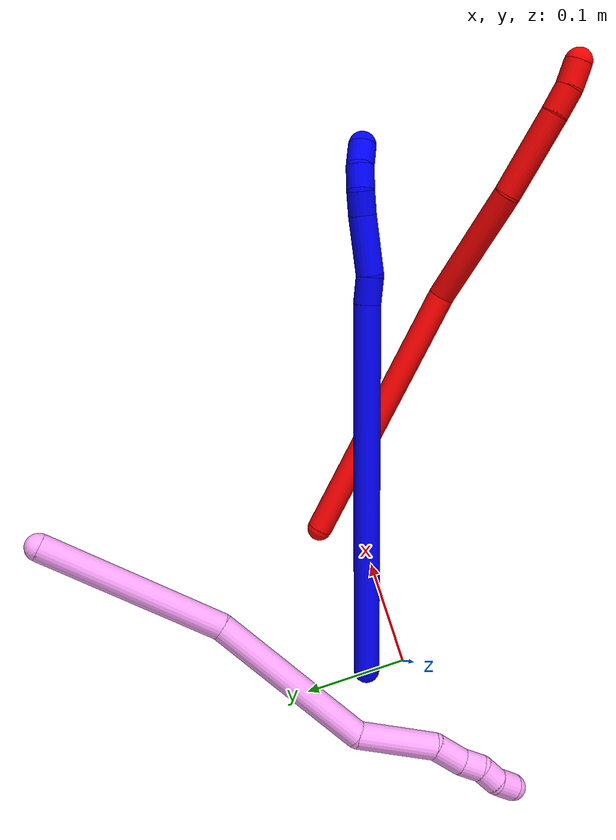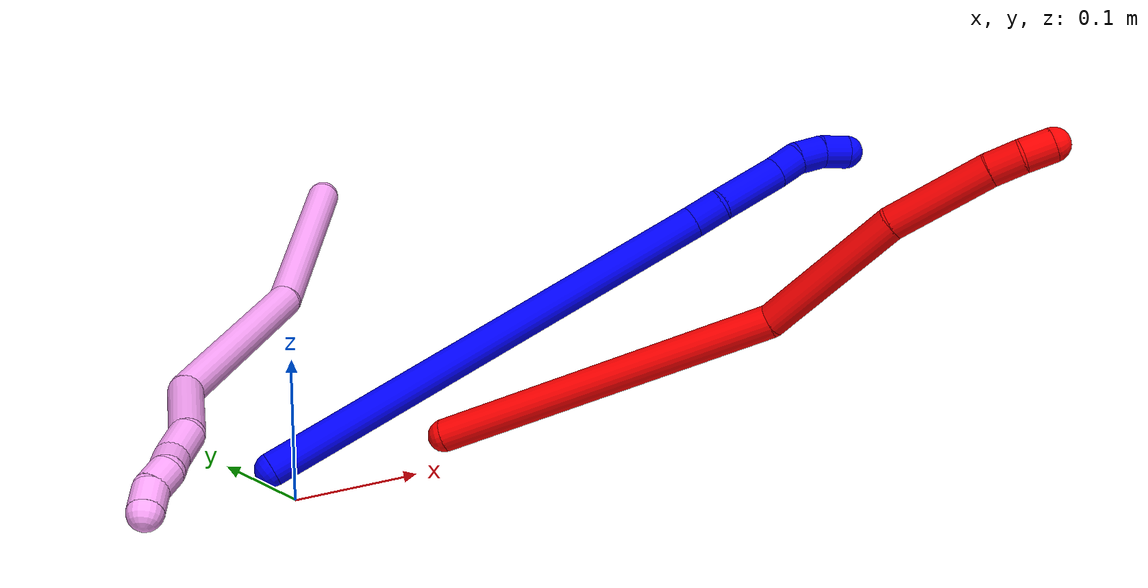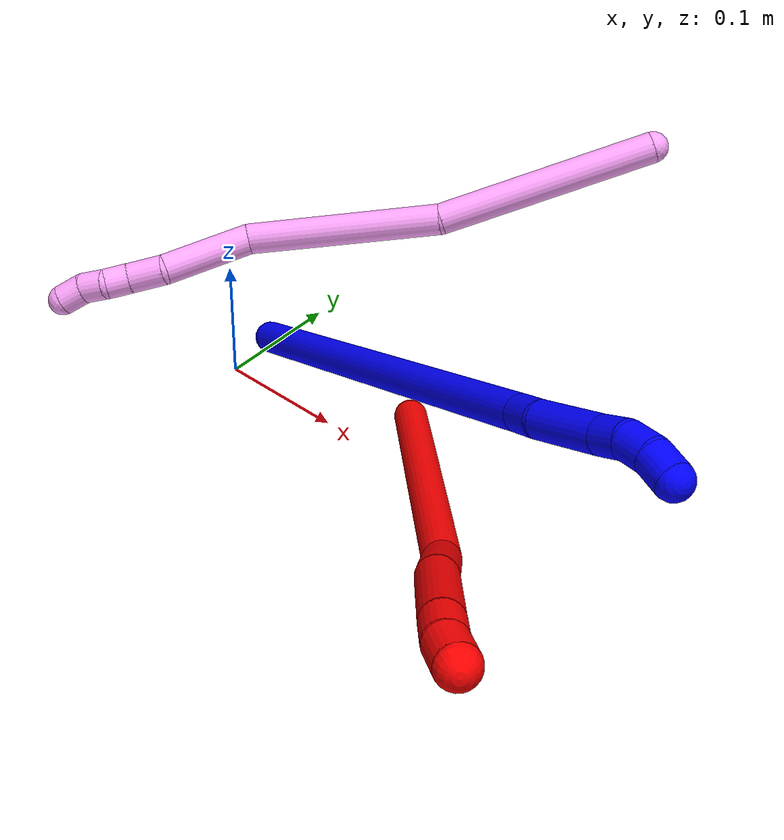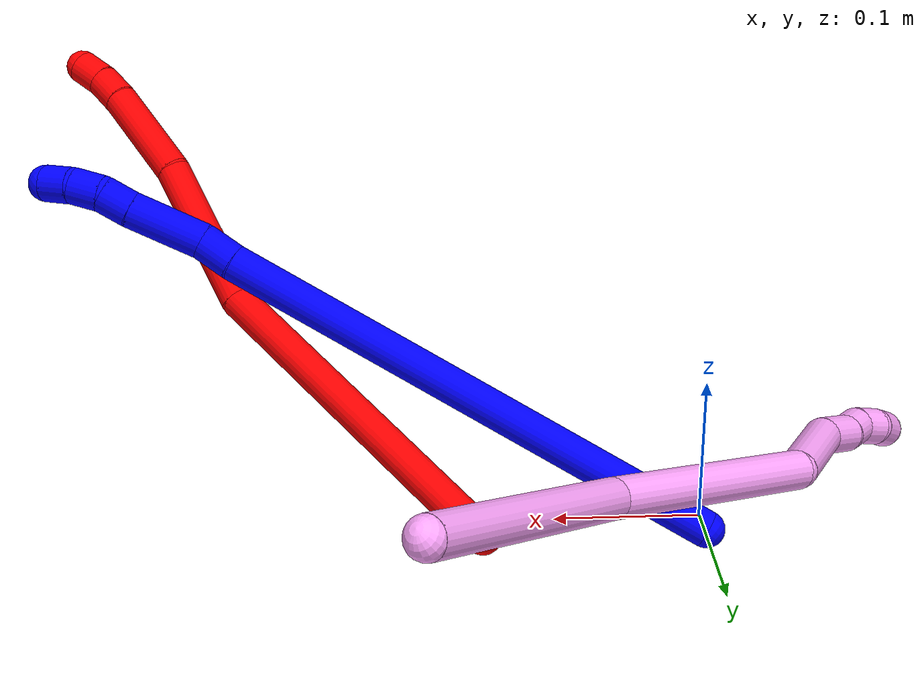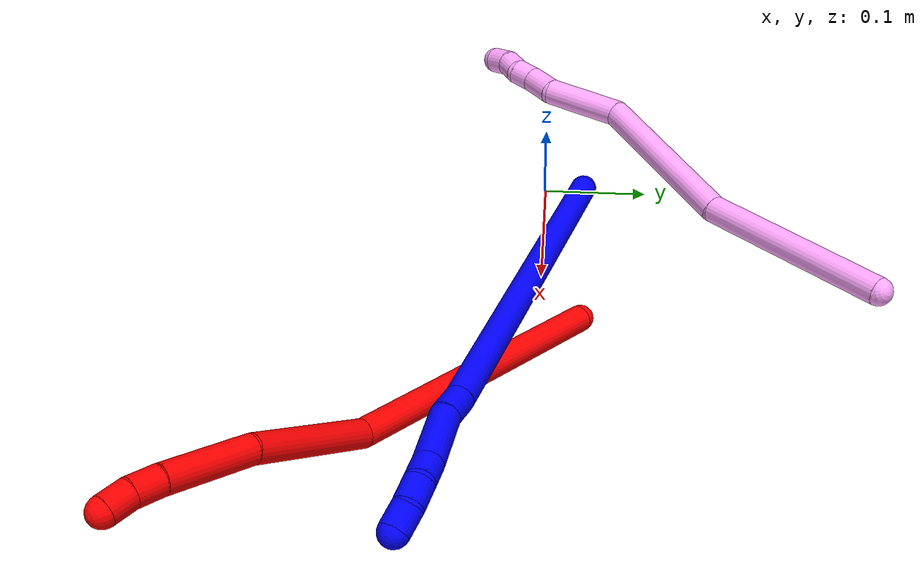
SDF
<sdf version="1.7">
 <world name="default">
  <model name="photoneo_s_sensor">
   <static>1</static>
   <pose>0 0 2 1.57079 1.57079 3.14159</pose>
   <link name="link">
    <inertial><mass>0.1</mass></inertial>
    <sensor name="sensor" type="depth">
     <update_rate>30</update_rate>
     <camera>
      <horizontal_fov>1.22</horizontal_fov>
      <image><width>1920</width><height>1200</height><format>B8G8R8</format></image>
      <clip><near>0.1</near><far>4</far></clip>
      <depth_camera><output>points</output></depth_camera>
     </camera>
     <plugin name="camera_plugin" filename="libgazebo_ros_depth_camera.so">
      <baseline>0.2</baseline>
      <alwaysOn>1</alwaysOn>
      <updateRate>0.0</updateRate>
      <cameraName>camera_ir</cameraName>
      <imageTopicName>/camera/color/image_raw</imageTopicName>
      <cameraInfoTopicName>/camera/color/camera_info</cameraInfoTopicName>
      <depthImageTopicName>/camera/depth/image_raw</depthImageTopicName>
      <depthImageCameraInfoTopicName>/camera/depth/camera_info</depthImageCameraInfoTopicName>
      <pointCloudTopicName>/camera/depth/points</pointCloudTopicName>
      <frameName>fr_optical</frameName>
      <pointCloudCutoff>0.1</pointCloudCutoff>
      <pointCloudCutoffMax>2.0</pointCloudCutoffMax>
      <distortionK1>0</distortionK1>
      <distortionK2>0</distortionK2>
      <distortionK3>0</distortionK3>
      <distortionT1>0</distortionT1>
      <distortionT2>0</distortionT2>
      <CxPrime>0</CxPrime>
      <Cx>0</Cx>
      <Cy>0</Cy>
      <focalLength>0</focalLength>
      <hackBaseline>0</hackBaseline>
     </plugin>
    </sensor>
   </link>
  </model>
  <model name="bin">
   <static>1</static>
   <link name="bottom">
    <collision name="collision-bottom">
     <pose>0 0 -0.01 0 -0 0</pose>
     <geometry><box><size>0.8 0.6 0.02</size></box></geometry>
     <surface>
      <friction><ode><mu>100</mu><mu2>100</mu2></ode></friction>
      <contact><collide_bitmask>65535</collide_bitmask></contact>
     </surface>
    </collision>
   </link>
   <link name="west_wall">
    <collision name="collision-west_wall">
     <pose>-0.41 0 0.1 0 -0 0</pose>
     <geometry><box><size>0.02 0.6 0.2</size></box></geometry>
     <surface>
      <friction><ode><mu>100</mu><mu2>100</mu2></ode></friction>
      <contact><collide_bitmask>65535</collide_bitmask></contact>
     </surface>
    </collision>
   </link>
   <link name="east_wall">
    <collision name="collision-east_wall">
     <pose>0.41 0 0.1 0 -0 0</pose>
     <geometry><box><size>0.02 0.6 0.2</size></box></geometry>
     <surface>
      <friction><ode><mu>100</mu><mu2>100</mu2></ode></friction>
      <contact><collide_bitmask>65535</collide_bitmask></contact>
     </surface>
    </collision>
   </link>
   <link name="south_wall">
    <collision name="collision-south_wall">
     <pose>0 -0.31 0.1 0 -0 0</pose>
     <geometry><box><size>0.8 0.02 0.2</size></box></geometry>
     <surface>
      <friction><ode><mu>100</mu><mu2>100</mu2></ode></friction>
      <contact><collide_bitmask>65535</collide_bitmask></contact>
     </surface>
    </collision>
   </link>
   <link name="north_wall">
    <collision name="collision-north_wall">
     <pose>0 0.31 0.1 0 -0 0</pose>
     <geometry><box><size>0.8 0.02 0.2</size></box></geometry>
     <surface>
      <friction><ode><mu>100</mu><mu2>100</mu2></ode></friction>
      <contact><collide_bitmask>65535</collide_bitmask></contact>
     </surface>
    </collision>
   </link>
  </model>
  <model name="1">
   <static>0</static>
   <link name="1">
    <collision name="collision-cylinder-e_1_1_4">
     <pose>0.032209 -0.00201 0.176955 0.011359 0.180038 0.001025</pose>
     <geometry><cylinder><radius>0.0125</radius><length>0.359748</length></cylinder></geometry>
     <surface>
      <friction><ode><mu>1.16</mu><mu2>1.16</mu2><slip1>0</slip1><slip2>0</slip2></ode></friction>
      <contact><ode><kp>1e+06</kp><kd>1</kd><max_vel>0</max_vel><min_depth>0.001</min_depth></ode></contact>
     </surface>
    </collision>
    <visual name="visual-cylinder-e_1_1_4">
     <pose>0.032209 -0.00201 0.176955 0.011359 0.180038 0.001025</pose>
     <geometry><cylinder><radius>0.0125</radius><length>0.359748</length></cylinder></geometry>
     <material><ambient>0 0 1 1</ambient></material>
    </visual>
    <collision name="collision-cylinder-e_2_4_5">
     <pose>0.065605 -0.005033 0.366294 0.081606 0.095205 0.00389</pose>
     <geometry><cylinder><radius>0.0125</radius><length>0.024962</length></cylinder></geometry>
     <surface>
      <friction><ode><mu>1.16</mu><mu2>1.16</mu2><slip1>0</slip1><slip2>0</slip2></ode></friction>
      <contact><ode><kp>1e+06</kp><kd>1</kd><max_vel>0</max_vel><min_depth>0.001</min_depth></ode></contact>
     </surface>
    </collision>
    <visual name="visual-cylinder-e_2_4_5">
     <pose>0.065605 -0.005033 0.366294 0.081606 0.095205 0.00389</pose>
     <geometry><cylinder><radius>0.0125</radius><length>0.024962</length></cylinder></geometry>
     <material><ambient>0 0 1 1</ambient></material>
    </visual>
    <collision name="collision-cylinder-e_3_5_6">
     <pose>0.073636 -0.003648 0.403814 -0.095113 0.264665 -0.01267</pose>
     <geometry><cylinder><radius>0.0125</radius><length>0.052325</length></cylinder></geometry>
     <surface>
      <friction><ode><mu>1.16</mu><mu2>1.16</mu2><slip1>0</slip1><slip2>0</slip2></ode></friction>
      <contact><ode><kp>1e+06</kp><kd>1</kd><max_vel>0</max_vel><min_depth>0.001</min_depth></ode></contact>
     </surface>
    </collision>
    <visual name="visual-cylinder-e_3_5_6">
     <pose>0.073636 -0.003648 0.403814 -0.095113 0.264665 -0.01267</pose>
     <geometry><cylinder><radius>0.0125</radius><length>0.052325</length></cylinder></geometry>
     <material><ambient>0 0 1 1</ambient></material>
    </visual>
    <collision name="collision-cylinder-e_4_6_7">
     <pose>0.082301 -0.000454 0.43939 -0.076038 0.172275 -0.006569</pose>
     <geometry><cylinder><radius>0.0125</radius><length>0.021251</length></cylinder></geometry>
     <surface>
      <friction><ode><mu>1.16</mu><mu2>1.16</mu2><slip1>0</slip1><slip2>0</slip2></ode></friction>
      <contact><ode><kp>1e+06</kp><kd>1</kd><max_vel>0</max_vel><min_depth>0.001</min_depth></ode></contact>
     </surface>
    </collision>
    <visual name="visual-cylinder-e_4_6_7">
     <pose>0.082301 -0.000454 0.43939 -0.076038 0.172275 -0.006569</pose>
     <geometry><cylinder><radius>0.0125</radius><length>0.021251</length></cylinder></geometry>
     <material><ambient>0 0 1 1</ambient></material>
    </visual>
    <collision name="collision-cylinder-e_5_7_8">
     <pose>0.08855 -0.000685 0.459422 0.106512 0.4302 0.023292</pose>
     <geometry><cylinder><radius>0.0125</radius><length>0.021231</length></cylinder></geometry>
     <surface>
      <friction><ode><mu>1.16</mu><mu2>1.16</mu2><slip1>0</slip1><slip2>0</slip2></ode></friction>
      <contact><ode><kp>1e+06</kp><kd>1</kd><max_vel>0</max_vel><min_depth>0.001</min_depth></ode></contact>
     </surface>
    </collision>
    <visual name="visual-cylinder-e_5_7_8">
     <pose>0.08855 -0.000685 0.459422 0.106512 0.4302 0.023292</pose>
     <geometry><cylinder><radius>0.0125</radius><length>0.021231</length></cylinder></geometry>
     <material><ambient>0 0 1 1</ambient></material>
    </visual>
    <collision name="collision-cylinder-e_6_8_2">
     <pose>0.098593 -0.004645 0.477061 0.349736 0.580467 0.105435</pose>
     <geometry><cylinder><radius>0.0125</radius><length>0.020482</length></cylinder></geometry>
     <surface>
      <friction><ode><mu>1.16</mu><mu2>1.16</mu2><slip1>0</slip1><slip2>0</slip2></ode></friction>
      <contact><ode><kp>1e+06</kp><kd>1</kd><max_vel>0</max_vel><min_depth>0.001</min_depth></ode></contact>
     </surface>
    </collision>
    <visual name="visual-cylinder-e_6_8_2">
     <pose>0.098593 -0.004645 0.477061 0.349736 0.580467 0.105435</pose>
     <geometry><cylinder><radius>0.0125</radius><length>0.020482</length></cylinder></geometry>
     <material><ambient>0 0 1 1</ambient></material>
    </visual>
    <collision name="collision-sphere-2">
     <pose>0.10421 -0.007579 0.485106 0 -0 0</pose>
     <geometry><sphere><radius>0.0125</radius></sphere></geometry>
     <surface>
      <friction><ode><mu>1.16</mu><mu2>1.16</mu2><slip1>0</slip1><slip2>0</slip2></ode></friction>
      <contact><ode><kp>1e+06</kp><kd>1</kd><max_vel>0</max_vel><min_depth>0.001</min_depth></ode></contact>
     </surface>
    </collision>
    <visual name="visual-sphere-2">
     <pose>0.10421 -0.007579 0.485106 0 -0 0</pose>
     <geometry><sphere><radius>0.0125</radius></sphere></geometry>
     <material><ambient>0 0 1 1</ambient></material>
    </visual>
    <collision name="collision-sphere-4">
     <pose>0.064419 -0.00402 0.353911 0 -0 0</pose>
     <geometry><sphere><radius>0.0125</radius></sphere></geometry>
     <surface>
      <friction><ode><mu>1.16</mu><mu2>1.16</mu2><slip1>0</slip1><slip2>0</slip2></ode></friction>
      <contact><ode><kp>1e+06</kp><kd>1</kd><max_vel>0</max_vel><min_depth>0.001</min_depth></ode></contact>
     </surface>
    </collision>
    <visual name="visual-sphere-4">
     <pose>0.064419 -0.00402 0.353911 0 -0 0</pose>
     <geometry><sphere><radius>0.0125</radius></sphere></geometry>
     <material><ambient>0 0 1 1</ambient></material>
    </visual>
    <collision name="collision-sphere-1">
     <geometry><sphere><radius>0.0125</radius></sphere></geometry>
     <surface>
      <friction><ode><mu>1.16</mu><mu2>1.16</mu2><slip1>0</slip1><slip2>0</slip2></ode></friction>
      <contact><ode><kp>1e+06</kp><kd>1</kd><max_vel>0</max_vel><min_depth>0.001</min_depth></ode></contact>
     </surface>
    </collision>
    <visual name="visual-sphere-1">
     <geometry><sphere><radius>0.0125</radius></sphere></geometry>
     <material><ambient>0 0 1 1</ambient></material>
    </visual>
    <collision name="collision-sphere-8">
     <pose>0.092977 -0.00171 0.469015 0 -0 0</pose>
     <geometry><sphere><radius>0.0125</radius></sphere></geometry>
     <surface>
      <friction><ode><mu>1.16</mu><mu2>1.16</mu2><slip1>0</slip1><slip2>0</slip2></ode></friction>
      <contact><ode><kp>1e+06</kp><kd>1</kd><max_vel>0</max_vel><min_depth>0.001</min_depth></ode></contact>
     </surface>
    </collision>
    <visual name="visual-sphere-8">
     <pose>0.092977 -0.00171 0.469015 0 -0 0</pose>
     <geometry><sphere><radius>0.0125</radius></sphere></geometry>
     <material><ambient>0 0 1 1</ambient></material>
    </visual>
    <collision name="collision-sphere-5">
     <pose>0.066792 -0.006046 0.378677 0 -0 0</pose>
     <geometry><sphere><radius>0.0125</radius></sphere></geometry>
     <surface>
      <friction><ode><mu>1.16</mu><mu2>1.16</mu2><slip1>0</slip1><slip2>0</slip2></ode></friction>
      <contact><ode><kp>1e+06</kp><kd>1</kd><max_vel>0</max_vel><min_depth>0.001</min_depth></ode></contact>
     </surface>
    </collision>
    <visual name="visual-sphere-5">
     <pose>0.066792 -0.006046 0.378677 0 -0 0</pose>
     <geometry><sphere><radius>0.0125</radius></sphere></geometry>
     <material><ambient>0 0 1 1</ambient></material>
    </visual>
    <collision name="collision-sphere-6">
     <pose>0.080479 -0.00125 0.428952 0 -0 0</pose>
     <geometry><sphere><radius>0.0125</radius></sphere></geometry>
     <surface>
      <friction><ode><mu>1.16</mu><mu2>1.16</mu2><slip1>0</slip1><slip2>0</slip2></ode></friction>
      <contact><ode><kp>1e+06</kp><kd>1</kd><max_vel>0</max_vel><min_depth>0.001</min_depth></ode></contact>
     </surface>
    </collision>
    <visual name="visual-sphere-6">
     <pose>0.080479 -0.00125 0.428952 0 -0 0</pose>
     <geometry><sphere><radius>0.0125</radius></sphere></geometry>
     <material><ambient>0 0 1 1</ambient></material>
    </visual>
    <collision name="collision-sphere-7">
     <pose>0.084122 0.000341 0.449828 0 -0 0</pose>
     <geometry><sphere><radius>0.0125</radius></sphere></geometry>
     <surface>
      <friction><ode><mu>1.16</mu><mu2>1.16</mu2><slip1>0</slip1><slip2>0</slip2></ode></friction>
      <contact><ode><kp>1e+06</kp><kd>1</kd><max_vel>0</max_vel><min_depth>0.001</min_depth></ode></contact>
     </surface>
    </collision>
    <visual name="visual-sphere-7">
     <pose>0.084122 0.000341 0.449828 0 -0 0</pose>
     <geometry><sphere><radius>0.0125</radius></sphere></geometry>
     <material><ambient>0 0 1 1</ambient></material>
    </visual>
    <inertial>
     <pose>0.045453 -0.002318 0.245591 0 -0 0</pose>
     <mass>0.5</mass>
     <inertia>
      <ixx>0.003863</ixx>
      <ixy>0</ixy>
      <ixz>0</ixz>
      <iyy>0.003918</iyy>
      <iyz>0</iyz>
      <izz>-0.000622</izz>
     </inertia>
    </inertial>
   </link>
   <pose>0.002924 0.03829 0.012201 0.490272 0.84455 0.257137</pose>
  </model>
  <model name="2">
   <static>0</static>
   <link name="2">
    <collision name="collision-cylinder-e_1_1_4">
     <pose>0.001031 -0.00292 0.130881 0.022304 0.007878 8.8e-05</pose>
     <geometry><cylinder><radius>0.0125</radius><length>0.261836</length></cylinder></geometry>
     <surface>
      <friction><ode><mu>1.16</mu><mu2>1.16</mu2><slip1>0</slip1><slip2>0</slip2></ode></friction>
      <contact><ode><kp>1e+06</kp><kd>1</kd><max_vel>0</max_vel><min_depth>0.001</min_depth></ode></contact>
     </surface>
    </collision>
    <visual name="visual-cylinder-e_1_1_4">
     <pose>0.001031 -0.00292 0.130881 0.022304 0.007878 8.8e-05</pose>
     <geometry><cylinder><radius>0.0125</radius><length>0.261836</length></cylinder></geometry>
     <material><ambient>1 0 0 1</ambient></material>
    </visual>
    <collision name="collision-cylinder-e_2_4_5">
     <pose>0.017242 -0.021675 0.314405 0.292199 0.269409 0.039879</pose>
     <geometry><cylinder><radius>0.0125</radius><length>0.114059</length></cylinder></geometry>
     <surface>
      <friction><ode><mu>1.16</mu><mu2>1.16</mu2><slip1>0</slip1><slip2>0</slip2></ode></friction>
      <contact><ode><kp>1e+06</kp><kd>1</kd><max_vel>0</max_vel><min_depth>0.001</min_depth></ode></contact>
     </surface>
    </collision>
    <visual name="visual-cylinder-e_2_4_5">
     <pose>0.017242 -0.021675 0.314405 0.292199 0.269409 0.039879</pose>
     <geometry><cylinder><radius>0.0125</radius><length>0.114059</length></cylinder></geometry>
     <material><ambient>1 0 0 1</ambient></material>
    </visual>
    <collision name="collision-cylinder-e_3_5_6">
     <pose>0.037585 -0.042995 0.405016 0.143471 0.133797 0.009629</pose>
     <geometry><cylinder><radius>0.0125</radius><length>0.077419</length></cylinder></geometry>
     <surface>
      <friction><ode><mu>1.16</mu><mu2>1.16</mu2><slip1>0</slip1><slip2>0</slip2></ode></friction>
      <contact><ode><kp>1e+06</kp><kd>1</kd><max_vel>0</max_vel><min_depth>0.001</min_depth></ode></contact>
     </surface>
    </collision>
    <visual name="visual-cylinder-e_3_5_6">
     <pose>0.037585 -0.042995 0.405016 0.143471 0.133797 0.009629</pose>
     <geometry><cylinder><radius>0.0125</radius><length>0.077419</length></cylinder></geometry>
     <material><ambient>1 0 0 1</ambient></material>
    </visual>
    <collision name="collision-cylinder-e_4_6_7">
     <pose>0.043498 -0.049268 0.455108 0.064909 0.061589 0.002</pose>
     <geometry><cylinder><radius>0.0125</radius><length>0.024342</length></cylinder></geometry>
     <surface>
      <friction><ode><mu>1.16</mu><mu2>1.16</mu2><slip1>0</slip1><slip2>0</slip2></ode></friction>
      <contact><ode><kp>1e+06</kp><kd>1</kd><max_vel>0</max_vel><min_depth>0.001</min_depth></ode></contact>
     </surface>
    </collision>
    <visual name="visual-cylinder-e_4_6_7">
     <pose>0.043498 -0.049268 0.455108 0.064909 0.061589 0.002</pose>
     <geometry><cylinder><radius>0.0125</radius><length>0.024342</length></cylinder></geometry>
     <material><ambient>1 0 0 1</ambient></material>
    </visual>
    <collision name="collision-cylinder-e_5_7_2">
     <pose>0.042804 -0.050937 0.478274 0.079582 -0.129528 -0.005164</pose>
     <geometry><cylinder><radius>0.0125</radius><length>0.022344</length></cylinder></geometry>
     <surface>
      <friction><ode><mu>1.16</mu><mu2>1.16</mu2><slip1>0</slip1><slip2>0</slip2></ode></friction>
      <contact><ode><kp>1e+06</kp><kd>1</kd><max_vel>0</max_vel><min_depth>0.001</min_depth></ode></contact>
     </surface>
    </collision>
    <visual name="visual-cylinder-e_5_7_2">
     <pose>0.042804 -0.050937 0.478274 0.079582 -0.129528 -0.005164</pose>
     <geometry><cylinder><radius>0.0125</radius><length>0.022344</length></cylinder></geometry>
     <material><ambient>1 0 0 1</ambient></material>
    </visual>
    <collision name="collision-sphere-2">
     <pose>0.041361 -0.051818 0.489317 0 -0 0</pose>
     <geometry><sphere><radius>0.0125</radius></sphere></geometry>
     <surface>
      <friction><ode><mu>1.16</mu><mu2>1.16</mu2><slip1>0</slip1><slip2>0</slip2></ode></friction>
      <contact><ode><kp>1e+06</kp><kd>1</kd><max_vel>0</max_vel><min_depth>0.001</min_depth></ode></contact>
     </surface>
    </collision>
    <visual name="visual-sphere-2">
     <pose>0.041361 -0.051818 0.489317 0 -0 0</pose>
     <geometry><sphere><radius>0.0125</radius></sphere></geometry>
     <material><ambient>1 0 0 1</ambient></material>
    </visual>
    <collision name="collision-sphere-7">
     <pose>0.044247 -0.050056 0.467231 0 -0 0</pose>
     <geometry><sphere><radius>0.0125</radius></sphere></geometry>
     <surface>
      <friction><ode><mu>1.16</mu><mu2>1.16</mu2><slip1>0</slip1><slip2>0</slip2></ode></friction>
      <contact><ode><kp>1e+06</kp><kd>1</kd><max_vel>0</max_vel><min_depth>0.001</min_depth></ode></contact>
     </surface>
    </collision>
    <visual name="visual-sphere-7">
     <pose>0.044247 -0.050056 0.467231 0 -0 0</pose>
     <geometry><sphere><radius>0.0125</radius></sphere></geometry>
     <material><ambient>1 0 0 1</ambient></material>
    </visual>
    <collision name="collision-sphere-6">
     <pose>0.042749 -0.04848 0.442986 0 -0 0</pose>
     <geometry><sphere><radius>0.0125</radius></sphere></geometry>
     <surface>
      <friction><ode><mu>1.16</mu><mu2>1.16</mu2><slip1>0</slip1><slip2>0</slip2></ode></friction>
      <contact><ode><kp>1e+06</kp><kd>1</kd><max_vel>0</max_vel><min_depth>0.001</min_depth></ode></contact>
     </surface>
    </collision>
    <visual name="visual-sphere-6">
     <pose>0.042749 -0.04848 0.442986 0 -0 0</pose>
     <geometry><sphere><radius>0.0125</radius></sphere></geometry>
     <material><ambient>1 0 0 1</ambient></material>
    </visual>
    <collision name="collision-sphere-5">
     <pose>0.032421 -0.03751 0.367047 0 -0 0</pose>
     <geometry><sphere><radius>0.0125</radius></sphere></geometry>
     <surface>
      <friction><ode><mu>1.16</mu><mu2>1.16</mu2><slip1>0</slip1><slip2>0</slip2></ode></friction>
      <contact><ode><kp>1e+06</kp><kd>1</kd><max_vel>0</max_vel><min_depth>0.001</min_depth></ode></contact>
     </surface>
    </collision>
    <visual name="visual-sphere-5">
     <pose>0.032421 -0.03751 0.367047 0 -0 0</pose>
     <geometry><sphere><radius>0.0125</radius></sphere></geometry>
     <material><ambient>1 0 0 1</ambient></material>
    </visual>
    <collision name="collision-sphere-1">
     <geometry><sphere><radius>0.0125</radius></sphere></geometry>
     <surface>
      <friction><ode><mu>1.16</mu><mu2>1.16</mu2><slip1>0</slip1><slip2>0</slip2></ode></friction>
      <contact><ode><kp>1e+06</kp><kd>1</kd><max_vel>0</max_vel><min_depth>0.001</min_depth></ode></contact>
     </surface>
    </collision>
    <visual name="visual-sphere-1">
     <geometry><sphere><radius>0.0125</radius></sphere></geometry>
     <material><ambient>1 0 0 1</ambient></material>
    </visual>
    <collision name="collision-sphere-4">
     <pose>0.002063 -0.005839 0.261762 0 -0 0</pose>
     <geometry><sphere><radius>0.0125</radius></sphere></geometry>
     <surface>
      <friction><ode><mu>1.16</mu><mu2>1.16</mu2><slip1>0</slip1><slip2>0</slip2></ode></friction>
      <contact><ode><kp>1e+06</kp><kd>1</kd><max_vel>0</max_vel><min_depth>0.001</min_depth></ode></contact>
     </surface>
    </collision>
    <visual name="visual-sphere-4">
     <pose>0.002063 -0.005839 0.261762 0 -0 0</pose>
     <geometry><sphere><radius>0.0125</radius></sphere></geometry>
     <material><ambient>1 0 0 1</ambient></material>
    </visual>
    <inertial>
     <pose>0.014323 -0.017805 0.246502 0 -0 0</pose>
     <mass>0.5</mass>
     <inertia>
      <ixx>0.001683</ixx>
      <ixy>0</ixy>
      <ixz>0</ixz>
      <iyy>0.001675</iyy>
      <iyz>0</iyz>
      <izz>6.2e-05</izz>
     </inertia>
    </inertial>
   </link>
   <pose>0.150536 0.038804 0.011521 -1.17351 -0.453041 -2.5678</pose>
  </model>
  <model name="4">
   <static>0</static>
   <link name="4">
    <collision name="collision-cylinder-e_1_1_4">
     <pose>-0.032705 -0.030009 -0.075829 2.76476 -0.381403 -1.58314</pose>
     <geometry><cylinder><radius>0.0125</radius><length>0.17573</length></cylinder></geometry>
     <surface>
      <friction><ode><mu>1.16</mu><mu2>1.16</mu2><slip1>0</slip1><slip2>0</slip2></ode></friction>
      <contact><ode><kp>1e+06</kp><kd>1</kd><max_vel>0</max_vel><min_depth>0.001</min_depth></ode></contact>
     </surface>
    </collision>
    <visual name="visual-cylinder-e_1_1_4">
     <pose>-0.032705 -0.030009 -0.075829 2.76476 -0.381403 -1.58314</pose>
     <geometry><cylinder><radius>0.0125</radius><length>0.17573</length></cylinder></geometry>
     <material><ambient>1 0.65098 0.996078 1</ambient></material>
    </visual>
    <collision name="collision-cylinder-e_2_4_5">
     <pose>-0.112379 -0.076091 -0.21438 2.89073 -0.627573 -2.40038</pose>
     <geometry><cylinder><radius>0.0125</radius><length>0.15998</length></cylinder></geometry>
     <surface>
      <friction><ode><mu>1.16</mu><mu2>1.16</mu2><slip1>0</slip1><slip2>0</slip2></ode></friction>
      <contact><ode><kp>1e+06</kp><kd>1</kd><max_vel>0</max_vel><min_depth>0.001</min_depth></ode></contact>
     </surface>
    </collision>
    <visual name="visual-cylinder-e_2_4_5">
     <pose>-0.112379 -0.076091 -0.21438 2.89073 -0.627573 -2.40038</pose>
     <geometry><cylinder><radius>0.0125</radius><length>0.15998</length></cylinder></geometry>
     <material><ambient>1 0.65098 0.996078 1</ambient></material>
    </visual>
    <collision name="collision-cylinder-e_3_5_6">
     <pose>-0.169584 -0.114076 -0.304979 2.47543 -0.281026 -0.776193</pose>
     <geometry><cylinder><radius>0.0125</radius><length>0.073811</length></cylinder></geometry>
     <surface>
      <friction><ode><mu>1.16</mu><mu2>1.16</mu2><slip1>0</slip1><slip2>0</slip2></ode></friction>
      <contact><ode><kp>1e+06</kp><kd>1</kd><max_vel>0</max_vel><min_depth>0.001</min_depth></ode></contact>
     </surface>
    </collision>
    <visual name="visual-cylinder-e_3_5_6">
     <pose>-0.169584 -0.114076 -0.304979 2.47543 -0.281026 -0.776193</pose>
     <geometry><cylinder><radius>0.0125</radius><length>0.073811</length></cylinder></geometry>
     <material><ambient>1 0.65098 0.996078 1</ambient></material>
    </visual>
    <collision name="collision-cylinder-e_4_6_7">
     <pose>-0.186738 -0.139996 -0.345529 2.83527 -0.479905 -2.01586</pose>
     <geometry><cylinder><radius>0.0125</radius><length>0.029969</length></cylinder></geometry>
     <surface>
      <friction><ode><mu>1.16</mu><mu2>1.16</mu2><slip1>0</slip1><slip2>0</slip2></ode></friction>
      <contact><ode><kp>1e+06</kp><kd>1</kd><max_vel>0</max_vel><min_depth>0.001</min_depth></ode></contact>
     </surface>
    </collision>
    <visual name="visual-cylinder-e_4_6_7">
     <pose>-0.186738 -0.139996 -0.345529 2.83527 -0.479905 -2.01586</pose>
     <geometry><cylinder><radius>0.0125</radius><length>0.029969</length></cylinder></geometry>
     <material><ambient>1 0.65098 0.996078 1</ambient></material>
    </visual>
    <collision name="collision-cylinder-e_5_7_8">
     <pose>-0.197772 -0.149026 -0.365856 2.56092 -0.422591 -1.24529</pose>
     <geometry><cylinder><radius>0.0125</radius><length>0.020075</length></cylinder></geometry>
     <surface>
      <friction><ode><mu>1.16</mu><mu2>1.16</mu2><slip1>0</slip1><slip2>0</slip2></ode></friction>
      <contact><ode><kp>1e+06</kp><kd>1</kd><max_vel>0</max_vel><min_depth>0.001</min_depth></ode></contact>
     </surface>
    </collision>
    <visual name="visual-cylinder-e_5_7_8">
     <pose>-0.197772 -0.149026 -0.365856 2.56092 -0.422591 -1.24529</pose>
     <geometry><cylinder><radius>0.0125</radius><length>0.020075</length></cylinder></geometry>
     <material><ambient>1 0.65098 0.996078 1</ambient></material>
    </visual>
    <collision name="collision-cylinder-e_6_8_9">
     <pose>-0.207195 -0.155182 -0.38192 3.00763 -0.558719 -2.68217</pose>
     <geometry><cylinder><radius>0.0125</radius><length>0.020018</length></cylinder></geometry>
     <surface>
      <friction><ode><mu>1.16</mu><mu2>1.16</mu2><slip1>0</slip1><slip2>0</slip2></ode></friction>
      <contact><ode><kp>1e+06</kp><kd>1</kd><max_vel>0</max_vel><min_depth>0.001</min_depth></ode></contact>
     </surface>
    </collision>
    <visual name="visual-cylinder-e_6_8_9">
     <pose>-0.207195 -0.155182 -0.38192 3.00763 -0.558719 -2.68217</pose>
     <geometry><cylinder><radius>0.0125</radius><length>0.020018</length></cylinder></geometry>
     <material><ambient>1 0.65098 0.996078 1</ambient></material>
    </visual>
    <collision name="collision-cylinder-e_7_9_2">
     <pose>-0.214771 -0.158926 -0.399936 2.87617 -0.224316 -1.40166</pose>
     <geometry><cylinder><radius>0.0125</radius><length>0.020417</length></cylinder></geometry>
     <surface>
      <friction><ode><mu>1.16</mu><mu2>1.16</mu2><slip1>0</slip1><slip2>0</slip2></ode></friction>
      <contact><ode><kp>1e+06</kp><kd>1</kd><max_vel>0</max_vel><min_depth>0.001</min_depth></ode></contact>
     </surface>
    </collision>
    <visual name="visual-cylinder-e_7_9_2">
     <pose>-0.214771 -0.158926 -0.399936 2.87617 -0.224316 -1.40166</pose>
     <geometry><cylinder><radius>0.0125</radius><length>0.020417</length></cylinder></geometry>
     <material><ambient>1 0.65098 0.996078 1</ambient></material>
    </visual>
    <collision name="collision-sphere-2">
     <pose>-0.217042 -0.161537 -0.40954 0 -0 0</pose>
     <geometry><sphere><radius>0.0125</radius></sphere></geometry>
     <surface>
      <friction><ode><mu>1.16</mu><mu2>1.16</mu2><slip1>0</slip1><slip2>0</slip2></ode></friction>
      <contact><ode><kp>1e+06</kp><kd>1</kd><max_vel>0</max_vel><min_depth>0.001</min_depth></ode></contact>
     </surface>
    </collision>
    <visual name="visual-sphere-2">
     <pose>-0.217042 -0.161537 -0.40954 0 -0 0</pose>
     <geometry><sphere><radius>0.0125</radius></sphere></geometry>
     <material><ambient>1 0.65098 0.996078 1</ambient></material>
    </visual>
    <collision name="collision-sphere-9">
     <pose>-0.2125 -0.156315 -0.390331 0 -0 0</pose>
     <geometry><sphere><radius>0.0125</radius></sphere></geometry>
     <surface>
      <friction><ode><mu>1.16</mu><mu2>1.16</mu2><slip1>0</slip1><slip2>0</slip2></ode></friction>
      <contact><ode><kp>1e+06</kp><kd>1</kd><max_vel>0</max_vel><min_depth>0.001</min_depth></ode></contact>
     </surface>
    </collision>
    <visual name="visual-sphere-9">
     <pose>-0.2125 -0.156315 -0.390331 0 -0 0</pose>
     <geometry><sphere><radius>0.0125</radius></sphere></geometry>
     <material><ambient>1 0.65098 0.996078 1</ambient></material>
    </visual>
    <collision name="collision-sphere-4">
     <pose>-0.065411 -0.060018 -0.151658 0 -0 0</pose>
     <geometry><sphere><radius>0.0125</radius></sphere></geometry>
     <surface>
      <friction><ode><mu>1.16</mu><mu2>1.16</mu2><slip1>0</slip1><slip2>0</slip2></ode></friction>
      <contact><ode><kp>1e+06</kp><kd>1</kd><max_vel>0</max_vel><min_depth>0.001</min_depth></ode></contact>
     </surface>
    </collision>
    <visual name="visual-sphere-4">
     <pose>-0.065411 -0.060018 -0.151658 0 -0 0</pose>
     <geometry><sphere><radius>0.0125</radius></sphere></geometry>
     <material><ambient>1 0.65098 0.996078 1</ambient></material>
    </visual>
    <collision name="collision-sphere-1">
     <geometry><sphere><radius>0.0125</radius></sphere></geometry>
     <surface>
      <friction><ode><mu>1.16</mu><mu2>1.16</mu2><slip1>0</slip1><slip2>0</slip2></ode></friction>
      <contact><ode><kp>1e+06</kp><kd>1</kd><max_vel>0</max_vel><min_depth>0.001</min_depth></ode></contact>
     </surface>
    </collision>
    <visual name="visual-sphere-1">
     <geometry><sphere><radius>0.0125</radius></sphere></geometry>
     <material><ambient>1 0.65098 0.996078 1</ambient></material>
    </visual>
    <collision name="collision-sphere-8">
     <pose>-0.201889 -0.154048 -0.373509 0 -0 0</pose>
     <geometry><sphere><radius>0.0125</radius></sphere></geometry>
     <surface>
      <friction><ode><mu>1.16</mu><mu2>1.16</mu2><slip1>0</slip1><slip2>0</slip2></ode></friction>
      <contact><ode><kp>1e+06</kp><kd>1</kd><max_vel>0</max_vel><min_depth>0.001</min_depth></ode></contact>
     </surface>
    </collision>
    <visual name="visual-sphere-8">
     <pose>-0.201889 -0.154048 -0.373509 0 -0 0</pose>
     <geometry><sphere><radius>0.0125</radius></sphere></geometry>
     <material><ambient>1 0.65098 0.996078 1</ambient></material>
    </visual>
    <collision name="collision-sphere-5">
     <pose>-0.159348 -0.092164 -0.277102 0 -0 0</pose>
     <geometry><sphere><radius>0.0125</radius></sphere></geometry>
     <surface>
      <friction><ode><mu>1.16</mu><mu2>1.16</mu2><slip1>0</slip1><slip2>0</slip2></ode></friction>
      <contact><ode><kp>1e+06</kp><kd>1</kd><max_vel>0</max_vel><min_depth>0.001</min_depth></ode></contact>
     </surface>
    </collision>
    <visual name="visual-sphere-5">
     <pose>-0.159348 -0.092164 -0.277102 0 -0 0</pose>
     <geometry><sphere><radius>0.0125</radius></sphere></geometry>
     <material><ambient>1 0.65098 0.996078 1</ambient></material>
    </visual>
    <collision name="collision-sphere-6">
     <pose>-0.179819 -0.135988 -0.332856 0 -0 0</pose>
     <geometry><sphere><radius>0.0125</radius></sphere></geometry>
     <surface>
      <friction><ode><mu>1.16</mu><mu2>1.16</mu2><slip1>0</slip1><slip2>0</slip2></ode></friction>
      <contact><ode><kp>1e+06</kp><kd>1</kd><max_vel>0</max_vel><min_depth>0.001</min_depth></ode></contact>
     </surface>
    </collision>
    <visual name="visual-sphere-6">
     <pose>-0.179819 -0.135988 -0.332856 0 -0 0</pose>
     <geometry><sphere><radius>0.0125</radius></sphere></geometry>
     <material><ambient>1 0.65098 0.996078 1</ambient></material>
    </visual>
    <collision name="collision-sphere-7">
     <pose>-0.193656 -0.144005 -0.358202 0 -0 0</pose>
     <geometry><sphere><radius>0.0125</radius></sphere></geometry>
     <surface>
      <friction><ode><mu>1.16</mu><mu2>1.16</mu2><slip1>0</slip1><slip2>0</slip2></ode></friction>
      <contact><ode><kp>1e+06</kp><kd>1</kd><max_vel>0</max_vel><min_depth>0.001</min_depth></ode></contact>
     </surface>
    </collision>
    <visual name="visual-sphere-7">
     <pose>-0.193656 -0.144005 -0.358202 0 -0 0</pose>
     <geometry><sphere><radius>0.0125</radius></sphere></geometry>
     <material><ambient>1 0.65098 0.996078 1</ambient></material>
    </visual>
    <inertial>
     <pose>-0.108684 -0.07881 -0.207286 0 -0 0</pose>
     <mass>0.5</mass>
     <inertia>
      <ixx>-0.000853</ixx>
      <ixy>0</ixy>
      <ixz>0</ixz>
      <iyy>-0.000322</iyy>
      <iyz>0</iyz>
      <izz>0.000607</izz>
     </inertia>
    </inertial>
   </link>
   <pose>0.19305 0.281296 0.157353 -0.559152 0.504234 -0.048182</pose>
  </model>
 </world>
</sdf>
